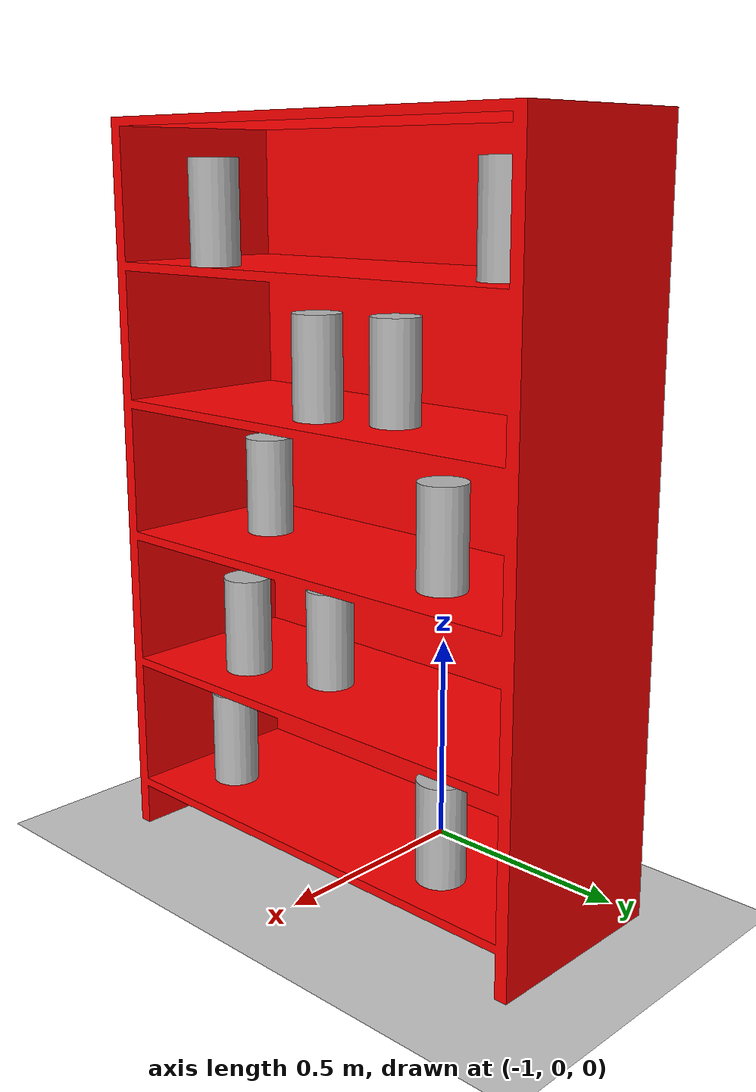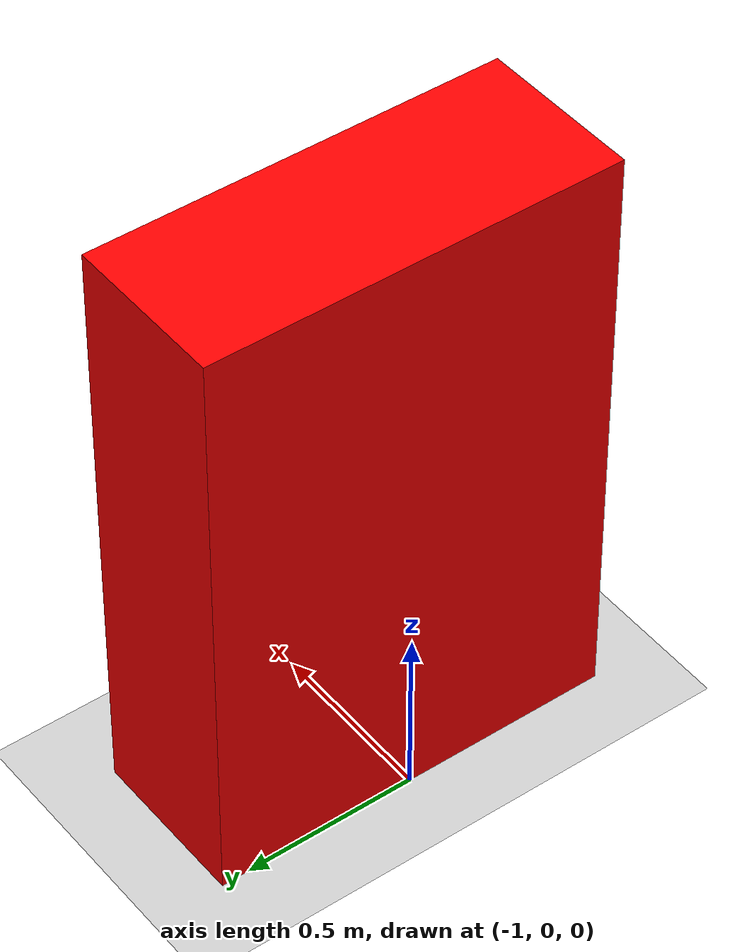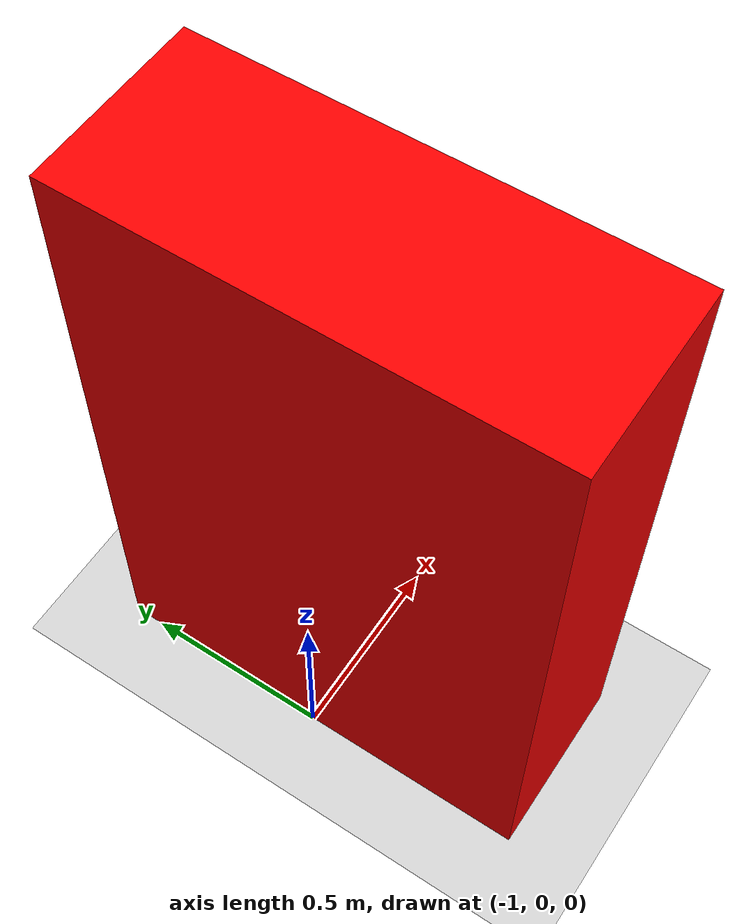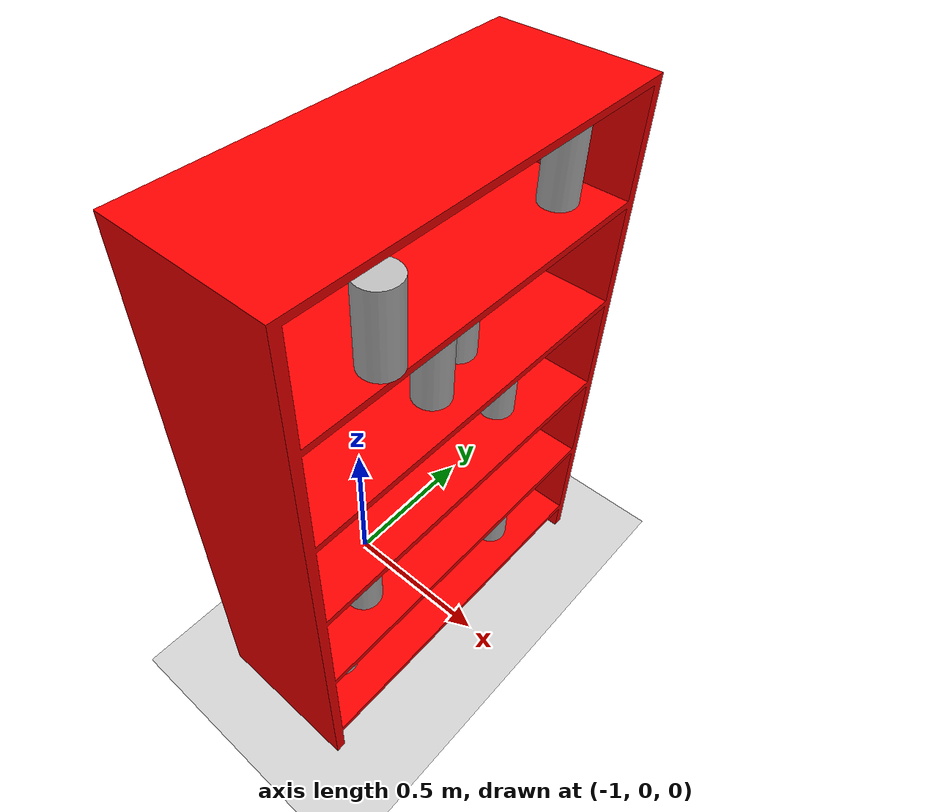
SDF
<sdf version="1.6">
 <world name="default">
  <light name="sun" type="directional">
   <pose>0 0 10 0 -0 0</pose>
   <diffuse>0.8 0.8 0.8 1</diffuse>
   <specular>0.2 0.2 0.2 1</specular>
   <attenuation>
    <range>1000</range>
    <constant>0.9</constant>
    <linear>0.01</linear>
    <quadratic>0.001</quadratic>
   </attenuation>
   <direction>-0.5 0.1 -0.9</direction>
  </light>
  <model name="ground_plane">
   <static>1</static>
   <link name="link">
    <collision name="collision">
     <geometry><plane><normal>0 0 1</normal><size>100 100</size></plane></geometry>
     <surface>
      <contact><collide_bitmask>65535</collide_bitmask></contact>
      <friction><ode><mu>100</mu><mu2>50</mu2></ode></friction>
     </surface>
    </collision>
    <visual name="visual">
     <cast_shadows>0</cast_shadows>
     <geometry><plane><normal>0 0 1</normal><size>100 100</size></plane></geometry>
     <material>
      <script><uri>file://media/materials/scripts/gazebo.material</uri><name>Gazebo/Grey</name></script>
     </material>
    </visual>
   </link>
  </model>
  <gravity>0 0 -9.8</gravity>
  <magnetic_field>6e-06 2.3e-05 -4.2e-05</magnetic_field>
  <atmosphere type="adiabatic"/>
  <physics name="default_physics" default="0" type="ode">
   <max_step_size>0.001</max_step_size>
   <real_time_factor>1</real_time_factor>
   <real_time_update_rate>1000</real_time_update_rate>
  </physics>
  <scene><ambient>0.4 0.4 0.4 1</ambient><background>0.7 0.7 0.7 1</background><shadows>1</shadows></scene>
  <audio><device>default</device></audio>
  <spherical_coordinates>
   <surface_model>EARTH_WGS84</surface_model>
   <latitude_deg>0</latitude_deg>
   <longitude_deg>0</longitude_deg>
   <elevation>0</elevation>
   <heading_deg>0</heading_deg>
  </spherical_coordinates>
  <model name="my_shelf">
   <link name="link_1">
    <inertial>
     <mass>1</mass>
     <inertia>
      <ixx>0.166667</ixx>
      <ixy>0</ixy>
      <ixz>0</ixz>
      <iyy>0.166667</iyy>
      <iyz>0</iyz>
      <izz>0.166667</izz>
     </inertia>
    </inertial>
    <pose>0 -1e-06 0 1.57264 -0 0</pose>
    <visual name="visual">
     <geometry><mesh><uri>/SRP/ShelfMini.stl</uri><scale>1 1 1</scale></mesh></geometry>
     <material>
      <lighting>1</lighting>
      <script><uri>file://media/materials/scripts/gazebo.material</uri><name>Gazebo/Grey</name></script>
      <ambient>1 0 0 0</ambient>
      <shader type="vertex"><normal_map>__default__</normal_map></shader>
      <diffuse>0.7 0.7 0.7 1</diffuse>
      <specular>0.01 0.01 0.01 1</specular>
      <emissive>0 0 0 1</emissive>
     </material>
    </visual>
    <collision name="collision">
     <geometry><mesh><uri>/SRP/ShelfMini.stl</uri><scale>1 1 1</scale></mesh></geometry>
     <surface>
      <friction>
       <ode><mu>1</mu><mu2>1</mu2><fdir1>0 0 0</fdir1><slip1>0</slip1><slip2>0</slip2></ode>
       <torsional>
        <coefficient>1</coefficient>
        <patch_radius>0</patch_radius>
        <surface_radius>0</surface_radius>
        <use_patch_radius>1</use_patch_radius>
        <ode><slip>0</slip></ode>
       </torsional>
      </friction>
      <bounce><restitution_coefficient>0</restitution_coefficient><threshold>1e+06</threshold></bounce>
      <contact>
       <collide_without_contact>0</collide_without_contact>
       <collide_without_contact_bitmask>1</collide_without_contact_bitmask>
       <collide_bitmask>1</collide_bitmask>
       <ode>
        <soft_cfm>0</soft_cfm>
        <soft_erp>0.2</soft_erp>
        <kp>1e+13</kp>
        <kd>1</kd>
        <max_vel>0.01</max_vel>
        <min_depth>0</min_depth>
       </ode>
       <bullet>
        <split_impulse>1</split_impulse>
        <split_impulse_penetration_threshold>-0.01</split_impulse_penetration_threshold>
        <soft_cfm>0</soft_cfm>
        <soft_erp>0.2</soft_erp>
        <kp>1e+13</kp>
        <kd>1</kd>
       </bullet>
      </contact>
     </surface>
    </collision>
   </link>
   <static>1</static>
   <pose>-1 -0.6 0 0 -0 1.5708</pose>
  </model>
  <model name="beer">
   <link name="link">
    <pose>0 0 0.115 0 -0 0</pose>
    <inertial>
     <mass>0.39</mass>
     <inertia><ixx>0.00058</ixx><ixy>0</ixy><ixz>0</ixz><iyy>0.00058</iyy><iyz>0</iyz><izz>0.00019</izz></inertia>
    </inertial>
    <collision name="collision">
     <geometry><cylinder><radius>0.055</radius><length>0.23</length></cylinder></geometry>
    </collision>
    <visual name="visual">
     <geometry><cylinder><radius>0.055</radius><length>0.23</length></cylinder></geometry>
     <material>
      <script>
       <uri>model://beer/materials/scripts</uri>
       <uri>model://beer/materials/textures</uri>
       <name>Beer/Diffuse</name>
      </script>
     </material>
    </visual>
   </link>
   <pose>-0.691798 -0.416034 0.119433 2.7e-05 0.001845 -6.7e-05</pose>
  </model>
  <model name="beer_clone">
   <link name="link">
    <pose>0 0 0.115 0 -0 0</pose>
    <inertial>
     <mass>0.39</mass>
     <inertia><ixx>0.00058</ixx><ixy>0</ixy><ixz>0</ixz><iyy>0.00058</iyy><iyz>0</iyz><izz>0.00019</izz></inertia>
    </inertial>
    <collision name="collision">
     <geometry><cylinder><radius>0.055</radius><length>0.23</length></cylinder></geometry>
    </collision>
    <visual name="visual">
     <geometry><cylinder><radius>0.055</radius><length>0.23</length></cylinder></geometry>
     <material>
      <script>
       <uri>model://beer/materials/scripts</uri>
       <uri>model://beer/materials/textures</uri>
       <name>Beer/Diffuse</name>
      </script>
     </material>
    </visual>
   </link>
   <pose>-0.656502 0.295712 0.11937 -2.9e-05 0.001831 -0.000107</pose>
  </model>
  <model name="beer_clone_clone">
   <link name="link">
    <pose>0 0 0.115 0 -0 0</pose>
    <inertial>
     <mass>0.39</mass>
     <inertia><ixx>0.00058</ixx><ixy>0</ixy><ixz>0</ixz><iyy>0.00058</iyy><iyz>0</iyz><izz>0.00019</izz></inertia>
    </inertial>
    <collision name="collision">
     <geometry><cylinder><radius>0.055</radius><length>0.23</length></cylinder></geometry>
    </collision>
    <visual name="visual">
     <geometry><cylinder><radius>0.055</radius><length>0.23</length></cylinder></geometry>
     <material>
      <script>
       <uri>model://beer/materials/scripts</uri>
       <uri>model://beer/materials/textures</uri>
       <name>Beer/Diffuse</name>
      </script>
     </material>
    </visual>
   </link>
   <pose>-0.726292 -0.111063 0.439497 1.2e-05 0.001849 -0.000134</pose>
  </model>
  <model name="beer_clone_clone_clone">
   <link name="link">
    <pose>0 0 0.115 0 -0 0</pose>
    <inertial>
     <mass>0.39</mass>
     <inertia><ixx>0.00058</ixx><ixy>0</ixy><ixz>0</ixz><iyy>0.00058</iyy><iyz>0</iyz><izz>0.00019</izz></inertia>
    </inertial>
    <collision name="collision">
     <geometry><cylinder><radius>0.055</radius><length>0.23</length></cylinder></geometry>
    </collision>
    <visual name="visual">
     <geometry><cylinder><radius>0.055</radius><length>0.23</length></cylinder></geometry>
     <material>
      <script>
       <uri>model://beer/materials/scripts</uri>
       <uri>model://beer/materials/textures</uri>
       <name>Beer/Diffuse</name>
      </script>
     </material>
    </visual>
   </link>
   <pose>-0.662106 -0.324186 0.439378 2e-06 0.001843 0.000192</pose>
  </model>
  <model name="beer_clone_clone_clone_0">
   <link name="link">
    <pose>0 0 0.115 0 -0 0</pose>
    <inertial>
     <mass>0.39</mass>
     <inertia><ixx>0.00058</ixx><ixy>0</ixy><ixz>0</ixz><iyy>0.00058</iyy><iyz>0</iyz><izz>0.00019</izz></inertia>
    </inertial>
    <collision name="collision">
     <geometry><cylinder><radius>0.055</radius><length>0.23</length></cylinder></geometry>
    </collision>
    <visual name="visual">
     <geometry><cylinder><radius>0.055</radius><length>0.23</length></cylinder></geometry>
     <material>
      <script>
       <uri>model://beer/materials/scripts</uri>
       <uri>model://beer/materials/textures</uri>
       <name>Beer/Diffuse</name>
      </script>
     </material>
    </visual>
   </link>
   <pose>-0.757748 -0.344934 0.759556 -2.4e-05 0.001842 -0.00011</pose>
  </model>
  <model name="beer_clone_clone_clone_0_clone">
   <link name="link">
    <pose>0 0 0.115 0 -0 0</pose>
    <inertial>
     <mass>0.39</mass>
     <inertia><ixx>0.00058</ixx><ixy>0</ixy><ixz>0</ixz><iyy>0.00058</iyy><iyz>0</iyz><izz>0.00019</izz></inertia>
    </inertial>
    <collision name="collision">
     <geometry><cylinder><radius>0.055</radius><length>0.23</length></cylinder></geometry>
    </collision>
    <visual name="visual">
     <geometry><cylinder><radius>0.055</radius><length>0.23</length></cylinder></geometry>
     <material>
      <script>
       <uri>model://beer/materials/scripts</uri>
       <uri>model://beer/materials/textures</uri>
       <name>Beer/Diffuse</name>
      </script>
     </material>
    </visual>
   </link>
   <pose>-0.674578 0.275185 0.759394 -2.5e-05 0.001833 0.000657</pose>
  </model>
  <model name="beer_clone_clone_clone_0_clone_clone">
   <link name="link">
    <pose>0 0 0.115 0 -0 0</pose>
    <inertial>
     <mass>0.39</mass>
     <inertia><ixx>0.00058</ixx><ixy>0</ixy><ixz>0</ixz><iyy>0.00058</iyy><iyz>0</iyz><izz>0.00019</izz></inertia>
    </inertial>
    <collision name="collision">
     <geometry><cylinder><radius>0.055</radius><length>0.23</length></cylinder></geometry>
    </collision>
    <visual name="visual">
     <geometry><cylinder><radius>0.055</radius><length>0.23</length></cylinder></geometry>
     <material>
      <script>
       <uri>model://beer/materials/scripts</uri>
       <uri>model://beer/materials/textures</uri>
       <name>Beer/Diffuse</name>
      </script>
     </material>
    </visual>
   </link>
   <pose>-0.645753 -0.060282 1.07935 -2.5e-05 0.001858 -9.2e-05</pose>
  </model>
  <model name="beer_clone_clone_clone_0_clone_clone_clone">
   <link name="link">
    <pose>0 0 0.115 0 -0 0</pose>
    <inertial>
     <mass>0.39</mass>
     <inertia><ixx>0.00058</ixx><ixy>0</ixy><ixz>0</ixz><iyy>0.00058</iyy><iyz>0</iyz><izz>0.00019</izz></inertia>
    </inertial>
    <collision name="collision">
     <geometry><cylinder><radius>0.055</radius><length>0.23</length></cylinder></geometry>
    </collision>
    <visual name="visual">
     <geometry><cylinder><radius>0.055</radius><length>0.23</length></cylinder></geometry>
     <material>
      <script>
       <uri>model://beer/materials/scripts</uri>
       <uri>model://beer/materials/textures</uri>
       <name>Beer/Diffuse</name>
      </script>
     </material>
    </visual>
   </link>
   <pose>-0.707637 0.110936 1.07946 2.4e-05 0.001837 -0.000417</pose>
  </model>
  <model name="beer_clone_clone_clone_0_clone_clone_clone_clone">
   <link name="link">
    <pose>0 0 0.115 0 -0 0</pose>
    <inertial>
     <mass>0.39</mass>
     <inertia><ixx>0.00058</ixx><ixy>0</ixy><ixz>0</ixz><iyy>0.00058</iyy><iyz>0</iyz><izz>0.00019</izz></inertia>
    </inertial>
    <collision name="collision">
     <geometry><cylinder><radius>0.055</radius><length>0.23</length></cylinder></geometry>
    </collision>
    <visual name="visual">
     <geometry><cylinder><radius>0.055</radius><length>0.23</length></cylinder></geometry>
     <material>
      <script>
       <uri>model://beer/materials/scripts</uri>
       <uri>model://beer/materials/textures</uri>
       <name>Beer/Diffuse</name>
      </script>
     </material>
    </visual>
   </link>
   <pose>-0.663037 0.432951 1.39938 -2.7e-05 0.001832 -0.000239</pose>
  </model>
  <model name="beer_clone_clone_clone_0_clone_clone_clone_clone_clone">
   <link name="link">
    <pose>0 0 0.115 0 -0 0</pose>
    <inertial>
     <mass>0.39</mass>
     <inertia><ixx>0.00058</ixx><ixy>0</ixy><ixz>0</ixz><iyy>0.00058</iyy><iyz>0</iyz><izz>0.00019</izz></inertia>
    </inertial>
    <collision name="collision">
     <geometry><cylinder><radius>0.055</radius><length>0.23</length></cylinder></geometry>
    </collision>
    <visual name="visual">
     <geometry><cylinder><radius>0.055</radius><length>0.23</length></cylinder></geometry>
     <material>
      <script>
       <uri>model://beer/materials/scripts</uri>
       <uri>model://beer/materials/textures</uri>
       <name>Beer/Diffuse</name>
      </script>
     </material>
    </visual>
   </link>
   <pose>-0.576384 -0.305435 1.39922 -8e-06 0.00184 -1.9e-05</pose>
  </model>
 </world>
</sdf>
